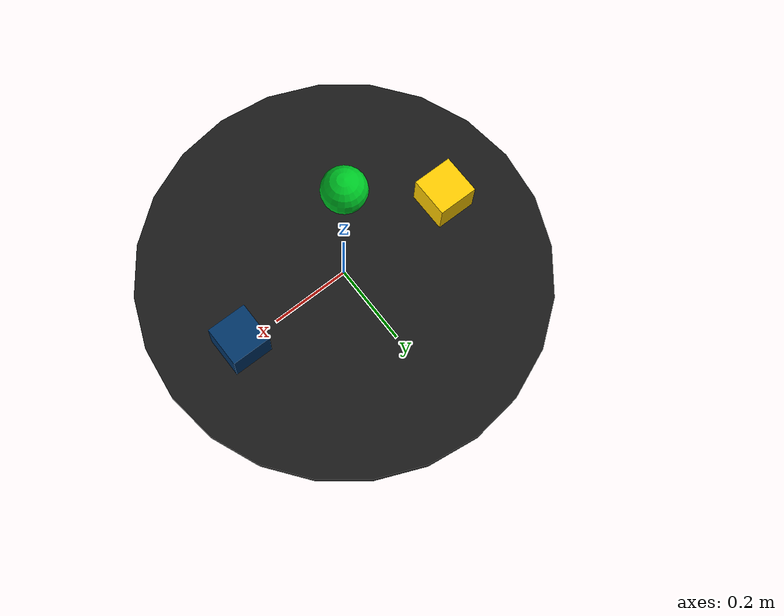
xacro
<?xml version="1.0"?>
<robot xmlns:xacro="http://www.ros.org/wiki/xacro" name="material_test_station">

  <xacro:include filename="$(find material_library)/palette.xacro" />
  <xacro:include filename="$(find material_library)/components.xacro" />

  <link name="base_link">
    <visual>
      <geometry><cylinder radius="0.5" length="0.02"/></geometry>
      <material name="carbon_fiber"/> <!-- From palette -->
    </visual>
  </link>

  <!-- Instantiate sensors with different materials from the palette -->
  <xacro:sensor_pod name="vision_sensor" parent="base_link" material_name="industrial_blue">
    <origin xyz="0.3 0 0.05" rpy="0 0 0"/>
  </xacro:sensor_pod>

  <xacro:sensor_pod name="alert_beacon" parent="base_link" material_name="warning_yellow">
    <origin xyz="-0.3 0 0.05" rpy="0 0 0"/>
  </xacro:sensor_pod>

  <!-- Direct use with manual color to check override -->
  <link name="top_indicator">
    <visual>
      <origin xyz="0 0 0.5"/>
      <geometry><sphere radius="0.05"/></geometry>
      <material name="neon_green"/>
    </visual>
  </link>
  <joint name="top_joint" type="fixed"><parent link="base_link"/><child link="top_indicator"/></joint>

</robot>

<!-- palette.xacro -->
<robot xmlns:xacro="http://www.ros.org/wiki/xacro">
  <material name="industrial_blue">
    <color rgba="0.0 0.2 0.4 1.0"/>
  </material>
  <material name="warning_yellow">
    <color rgba="1.0 0.8 0.0 1.0"/>
  </material>
  <material name="neon_green">
    <color rgba="0.0 1.0 0.2 0.8"/>
  </material>
  <material name="carbon_fiber">
    <color rgba="0.1 0.1 0.1 1.0"/>
  </material>
</robot>

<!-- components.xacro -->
<robot xmlns:xacro="http://www.ros.org/wiki/xacro">
  <xacro:macro name="sensor_pod" params="name parent material_name *origin">
    <joint name="${name}_joint" type="fixed">
      <xacro:insert_block name="origin" />
      <parent link="${parent}"/>
      <child link="${name}_link"/>
    </joint>

    <link name="${name}_link">
      <visual>
        <geometry><box size="0.1 0.1 0.1"/></geometry>
        <!-- Use the passed material name -->
        <material name="${material_name}"/>
      </visual>
    </link>
  </xacro:macro>
</robot>
